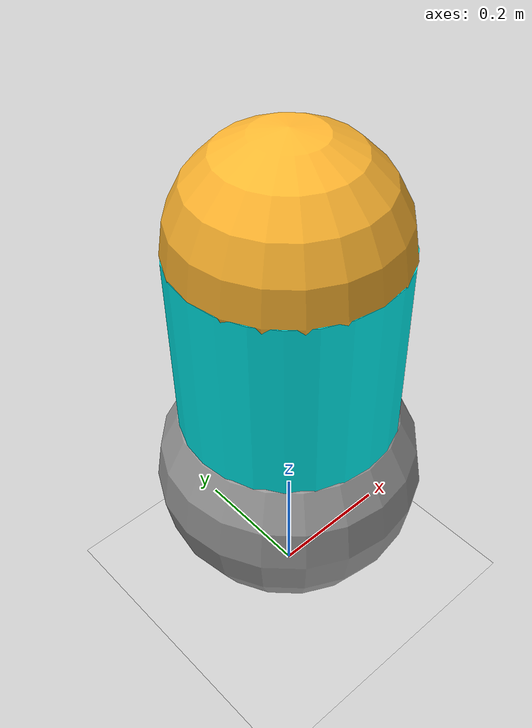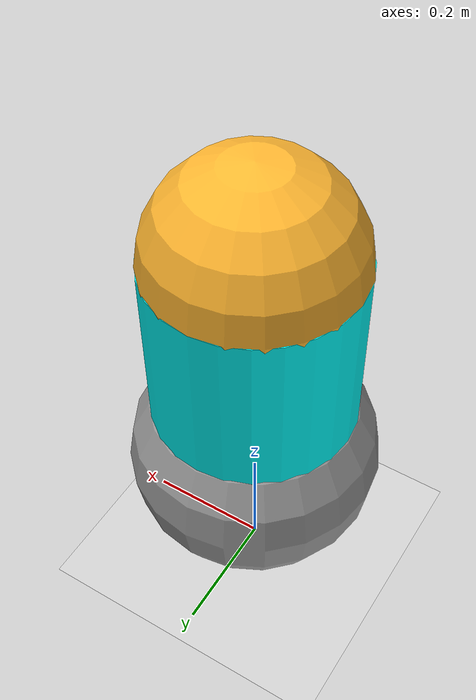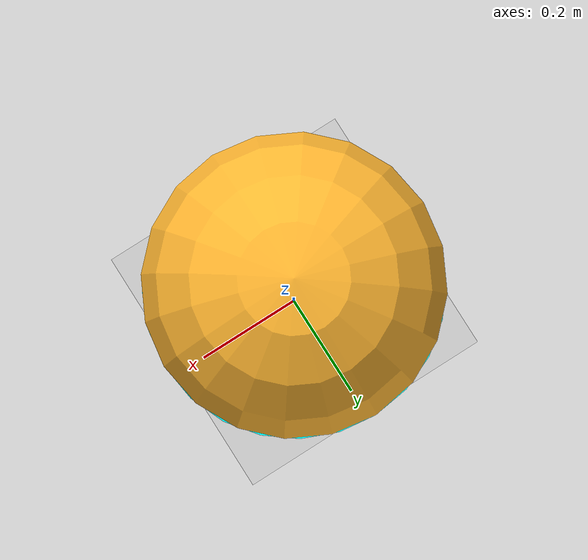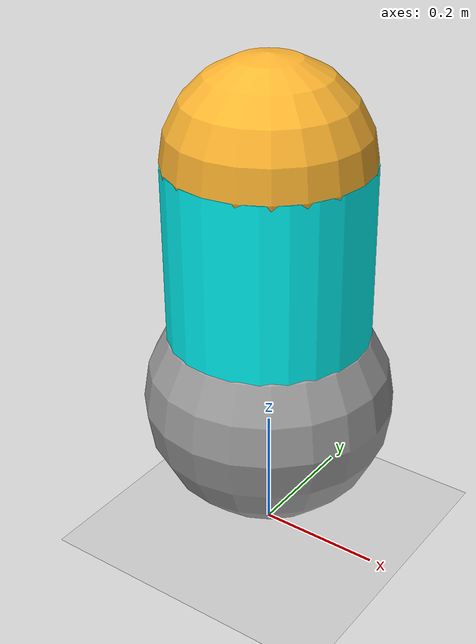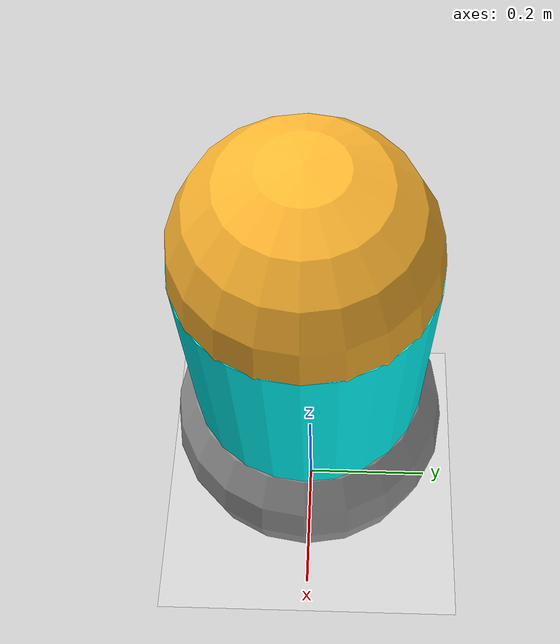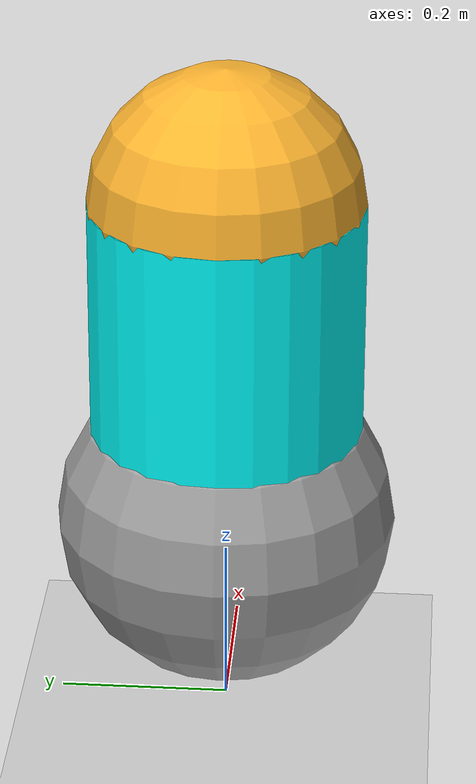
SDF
<?xml version="1.0" ?>
<sdf version="1.8">
  <world name="ballbot">

    <light name="sun" type="directional">
      <cast_shadows>true</cast_shadows>
      <pose>0 0 10 0 0 0</pose>
      <diffuse>0.8 0.8 0.8 1</diffuse>
      <specular>0.2 0.2 0.2 1</specular>
      <attenuation>
        <range>1000</range>
        <constant>0.9</constant>
        <linear>0.01</linear>
        <quadratic>0.001</quadratic>
      </attenuation>
      <direction>-0.5 0.1 -0.9</direction>
    </light>

    <model name="ground_plane">
      <static>true</static>
      <link name="link">
        <collision name="collision">
          <geometry>
            <plane>
              <normal>0 0 1</normal>
              <size>100 100</size>
            </plane>
          </geometry>
        </collision>
        <visual name="visual">
          <geometry>
            <plane>
              <normal>0 0 1</normal>
              <size>100 100</size>
            </plane>
          </geometry>
          <material>
            <ambient>0.8 0.8 0.8 1</ambient>
            <diffuse>0.8 0.8 0.8 1</diffuse>
            <specular>0.8 0.8 0.8 1</specular>
          </material>
        </visual>
      </link>
    </model>

    <model name="ballbot">
      <self_collide>true</self_collide>
      <pose>0 0 0.45 0 0 0</pose>
      <include merge="true">
        <uri>/mnt/d/ros/install/robot_description/share/robot_description/src/models/ballbot.sdf</uri>
      </include>

      <plugin
        filename="gz-sim-joint-state-publisher-system"
        name="gz::sim::systems::JointStatePublisher">
      </plugin>

      <plugin
        filename="gz-sim-pose-publisher-system"
        name="gz::sim::systems::PosePublisher">
        <publish_link_pose>true</publish_link_pose>
        <use_pose_vector_msg>true</use_pose_vector_msg>
        <static_publisher>true</static_publisher>
        <static_update_frequency>1</static_update_frequency>
      </plugin>

      <plugin
        filename="gz-sim-odometry-publisher-system"
        name="gz::sim::systems::OdometryPublisher">
        <odom_frame>ballbot/odom</odom_frame>
        <robot_base_frame>ballbot</robot_base_frame>
      </plugin>

    </model>
  </world>
</sdf>

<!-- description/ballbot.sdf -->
<sdf version='1.11'>
  <model name='ballbot'>
    <link name='chassis'>
      <inertial>
        <pose>0 0 -0.23636363636363639 0 0 0</pose>
        <mass>5.5</mass>
        <inertia>
          <ixx>0.48702060606060599</ixx>
          <ixy>0</ixy>
          <ixz>0</ixz>
          <iyy>0.45928727272727282</iyy>
          <iyz>7.8562139380718636e-18</iyz>
          <izz>0.094293333333333326</izz>
        </inertia>
      </inertial>
      <collision name='chassis_collision'>
        <pose>0 0 0 0 0 0</pose>
        <geometry>
          <cylinder>
            <length>0.40000000000000002</length>
            <radius>0.16</radius>
          </cylinder>
        </geometry>
      </collision>
      <collision name='chassis_fixed_joint_lump__head_collision_1'>
        <pose>0 0 0.20000000000000001 0 0 0</pose>
        <geometry>
          <sphere>
            <radius>0.16</radius>
          </sphere>
        </geometry>
      </collision>
      <visual name='chassis_visual'>
        <pose>0 0 0 0 0 0</pose>
        <geometry>
          <cylinder>
            <length>0.40000000000000002</length>
            <radius>0.16</radius>
          </cylinder>
        </geometry>
        <material>
          <diffuse>0 1 1 1</diffuse>
          <ambient>0 1 1 1</ambient>
        </material>
      </visual>
      <visual name='chassis_fixed_joint_lump__head_visual_1'>
        <pose>0 0 0.20000000000000001 0 0 0</pose>
        <geometry>
          <sphere>
            <radius>0.16</radius>
          </sphere>
        </geometry>
        <material>
          <diffuse>1 0.712499976 0.187500015 1</diffuse>
          <ambient>1 0.712499976 0.187500015 1</ambient>
        </material>
      </visual>
    </link>

    <joint name='ball_wheel_joint' type='ball'>
      <pose relative_to='chassis'>0 0 -0.20000000000000001 0 0 0</pose>
      <parent>chassis</parent>
      <child>ball_wheel</child>
    </joint>

    <link name='ball_wheel'>
      <pose relative_to='ball_wheel_joint'>0 0 0 0 0 0</pose>
      <inertial>
        <pose>0 0 0 0 0 0</pose>
        <mass>2</mass>
        <inertia>
          <ixx>0.032000000000000008</ixx>
          <ixy>0</ixy>
          <ixz>0</ixz>
          <iyy>0.032000000000000008</iyy>
          <iyz>0</iyz>
          <izz>0.032000000000000008</izz>
        </inertia>
      </inertial>
      <collision name='ball_wheel_collision'>
        <pose>0 0 0 0 0 0</pose>
        <geometry>
          <sphere>
            <radius>0.20000000000000001</radius>
          </sphere>
        </geometry>
      </collision>
      <visual name='ball_wheel_visual'>
        <pose>0 0 0 0 0 0</pose>
        <geometry>
          <sphere>
            <radius>0.20000000000000001</radius>
          </sphere>
        </geometry>
        <material>
          <diffuse>0.625 0.625 0.625 1</diffuse>
          <ambient>0.625 0.625 0.625 1</ambient>
        </material>
      </visual>
    </link>

    <frame name='base_joint' attached_to='chassis'>
      <pose>0 0 -0.40000000000000002 0 0 0</pose>
    </frame>

    <frame name='base_footprint' attached_to='base_joint'>
      <pose>0 0 0 0 0 0</pose>
    </frame>

    <frame name='head_joint' attached_to='chassis'>
      <pose>0 0 0.20000000000000001 0 0 0</pose>
    </frame>

    <frame name='head' attached_to='head_joint'>
      <pose>0 0 0 0 0 0</pose>
    </frame>

    <plugin
      filename="ignition-gazebo-diff-drive-system"
      name="ignition::gazebo::systems::DiffDrive">
      <left_joint>ball_wheel_joint</left_joint>
      <right_joint>ball_wheel_joint</right_joint>
      <wheel_separation>0.0001</wheel_separation>
      <wheel_radius>0.2</wheel_radius>
      <odom_publish_frequency>1</odom_publish_frequency>
      <max_linear_acceleration>1</max_linear_acceleration>
      <min_linear_acceleration>-1</min_linear_acceleration>
      <max_angular_acceleration>2</max_angular_acceleration>
      <min_angular_acceleration>-2</min_angular_acceleration>
      <max_linear_velocity>0.5</max_linear_velocity>
      <min_linear_velocity>-0.5</min_linear_velocity>
      <max_angular_velocity>1</max_angular_velocity>
      <min_angular_velocity>-1</min_angular_velocity>
    </plugin>

  </model>
</sdf>
